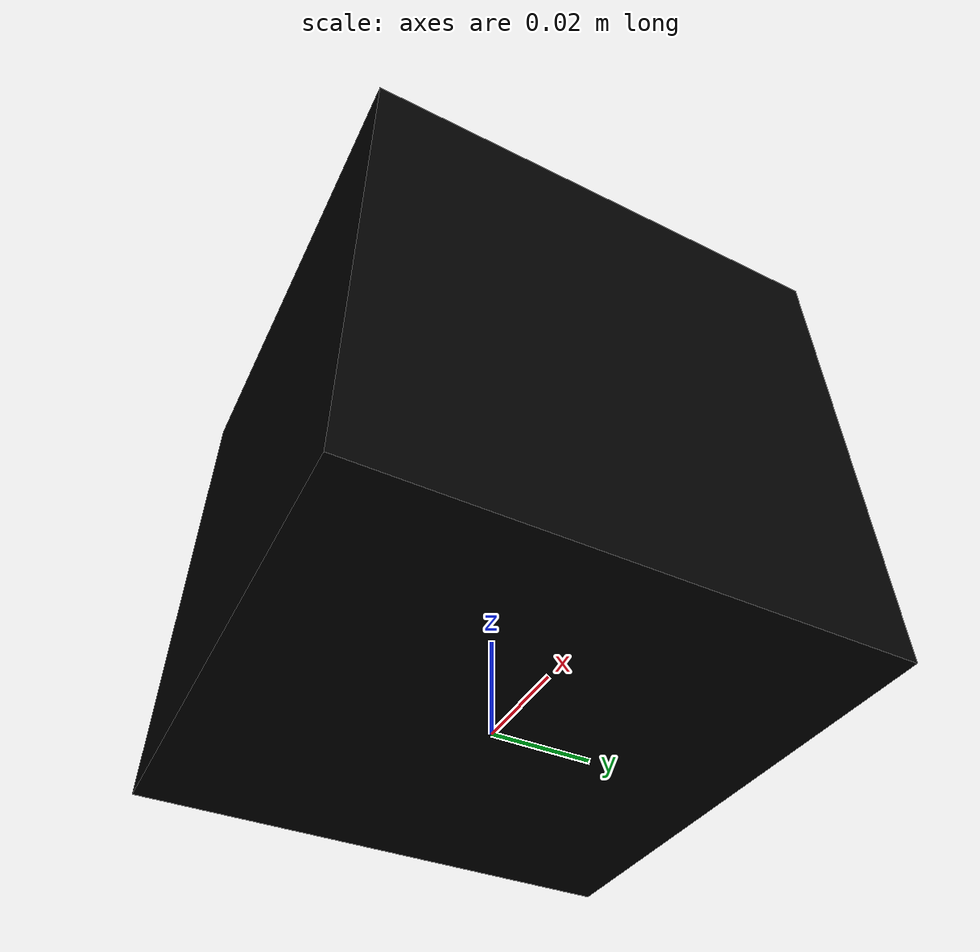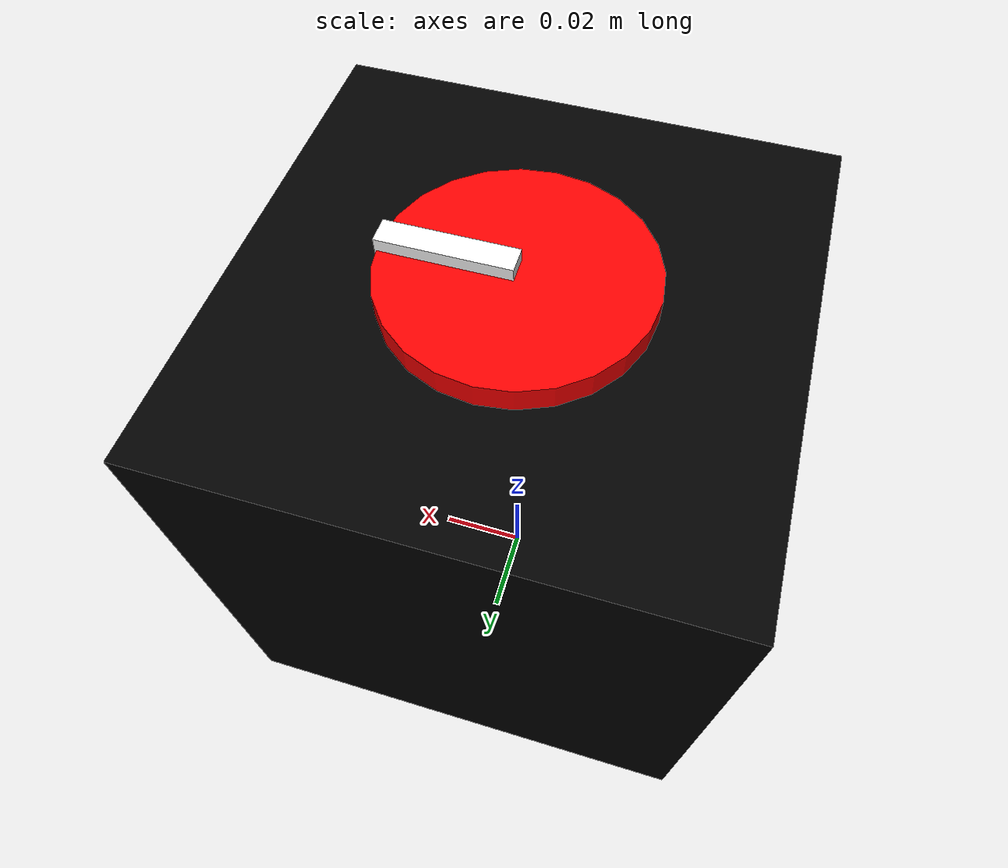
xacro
<?xml version="1.0"?>
<robot name="controlled_qube" xmlns:xacro="http://www.ros.org/wiki/xacro">

  <!-- Argumenter -->
  <xacro:arg name="baud_rate" default="115200" />
  <xacro:arg name="device" default="/dev/ttyACM0" />
  <xacro:arg name="simulation" default="true" />

  <!-- Inkluder makro -->
  <xacro:include filename="$(find qube_description)/urdf/qube.macro.xacro"/>
  <xacro:include filename="$(find qube_driver)/ros2_control/qube_driver.ros2_control.xacro"/>

  <!-- Kall Qube-beskrivelsen -->
  <xacro:qube base_length="0.102" base_width="0.102" base_height="0.102"
              disk_radius="0.025" disk_height="0.01"
              pointer_length="0.025" pointer_width="0.005"/>

  <!-- world link -->
  <link name="world"/>

  <!-- world-to-base joint -->
  <joint name="world_to_base" type="fixed">
    <parent link="world"/>
    <child link="base_link"/>
    <origin xyz="0 0 0" rpy="0 0 0"/>
  </joint>

  <!-- Koble til ros2_control -->
  <xacro:qube_driver_ros2_control
      name="qube_driver"
      prefix=""
      baud_rate="$(arg baud_rate)"
      device="$(arg device)"
      simulation="$(arg simulation)" />

</robot>

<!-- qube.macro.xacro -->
<robot xmlns:xacro="http://www.ros.org/wiki/xacro">
  <xacro:macro name="qube" params="base_length base_width base_height disk_radius disk_height pointer_length pointer_width">

    <material name="black">
      <color rgba="0 0 0 1"/>
    </material>

    <material name="red">
      <color rgba="1 0 0 1"/>
    </material>

    <material name="white">
      <color rgba="1 1 1 1"/>
    </material>

    <!-- base -->
    <link name="base_link"/>

    <!-- stator -->
    <link name="stator_link">
      <visual>
        <geometry>
          <box size="${base_length} ${base_width} ${base_height}" />
        </geometry>
        <material name="black" />
      </visual>
    </link>

    <!-- disk -->
    <link name="disk_link">
      <visual>
        <geometry>
          <cylinder length="${disk_height}" radius="${disk_radius}"/>
        </geometry>
        <material name="red"/>
      </visual>
    </link>

<!-- pointer -->
    <link name="pointer_link">
      <visual>
        <geometry>
          <box size="${pointer_length} ${pointer_width} ${disk_height/2}" />
        </geometry>
        <material name="white" />
      </visual>
    </link>

    <joint name="stator_joint" type="fixed">
      <parent link="base_link" />
      <child link="stator_link" />
      <origin xyz="0 0 ${base_height/2}" rpy="0 0 0"/>
    </joint>

    <joint name="motor_joint" type="revolute">
      <axis xyz="0 0 -1" />
      <limit lower="-3.1415" upper="3.1415" effort="10.0" velocity="1.0"/>
      <parent link="stator_link"/>
      <child link="disk_link"/>
      <origin xyz="0 0 ${base_height/2}" rpy="0 0 0" />
    </joint>

    <joint name="pointer_joint" type="fixed">
      <parent link="disk_link"/>
      <child link="pointer_link"/>
      <origin xyz="${disk_radius/2} 0 ${disk_height/2}" rpy="0 0 0" />
    </joint>

  </xacro:macro>
</robot>
